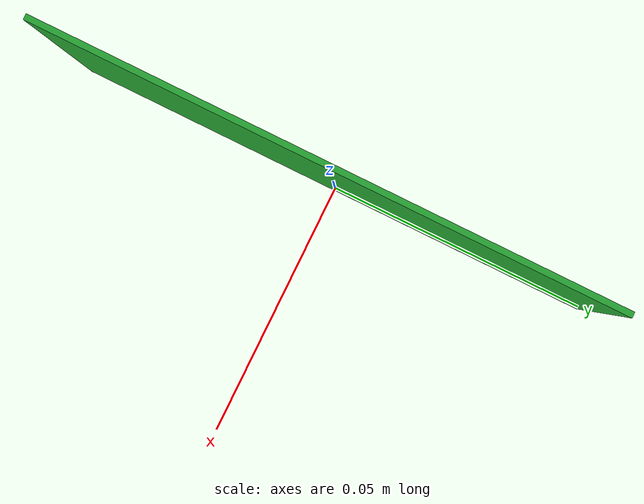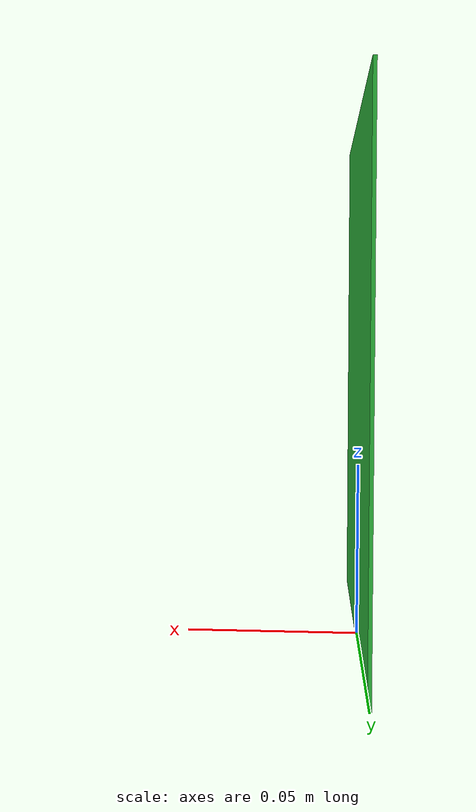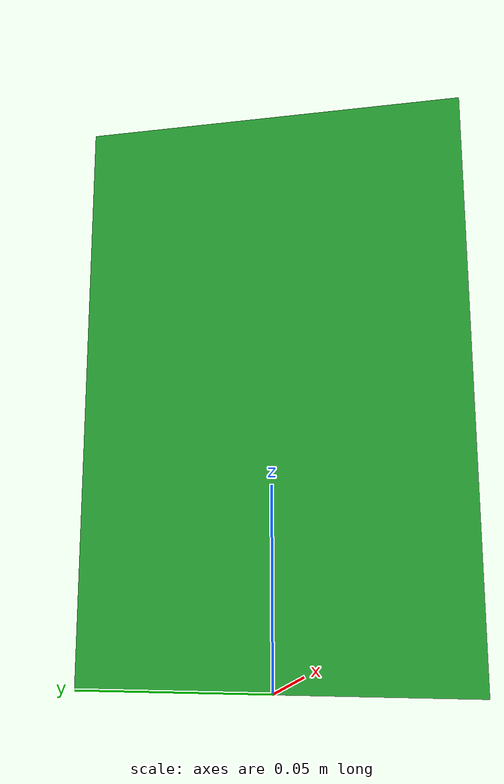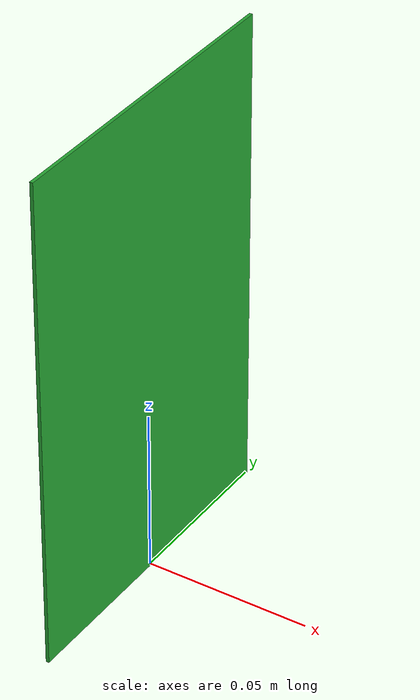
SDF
<?xml version="1.0" ?>
<sdf version="1.5">
    <model name='bird_green'>
        <static>1</static>
        <link name='link'>
            <collision name='collision'>
            <geometry>
                <box>
                <size>0.001 0.1 0.15</size>
                </box>
            </geometry>
            </collision>
            <visual name='visual'>
            <geometry>
                <box>
                <size>0.001 0.1 0.15</size>
                </box>
            </geometry>
            <material>
                <script>
                    <uri>model://bird_green/materials/scripts</uri>
                    <uri>model://bird_green/materials/textures</uri>
                    <name>GreenBirdImage</name>
                </script>
            </material>
            </visual>
        </link>
        <pose frame=''>0 0 0.075 0 0 0 1</pose>
    </model>
</sdf>
